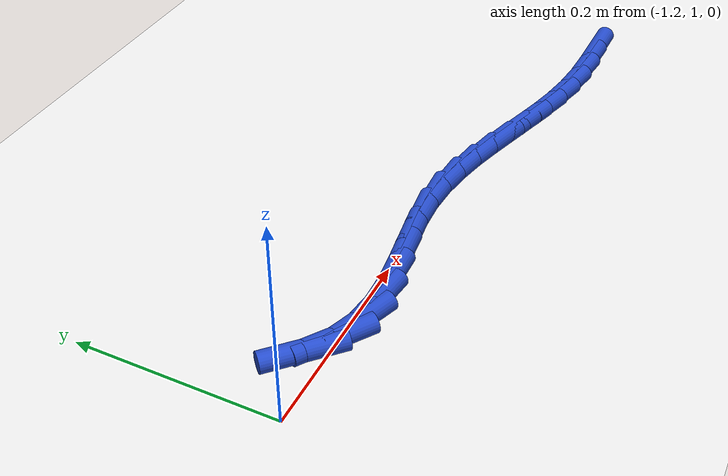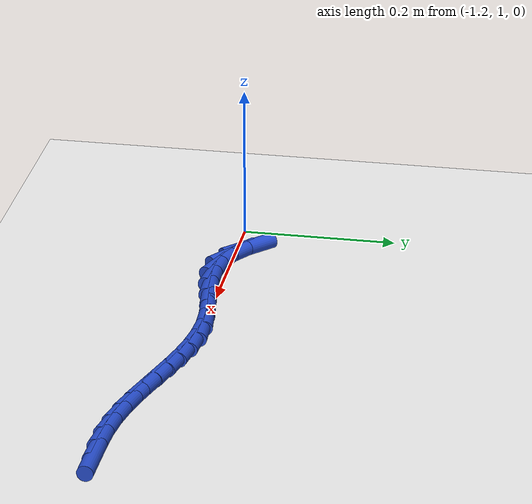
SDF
<sdf version="1.6">
 <world name="default">
  <model name="ground_plane">
   <static>1</static>
   <link name="link">
    <collision name="collision">
     <geometry><plane><normal>0 0 1</normal><size>100 100</size></plane></geometry>
     <surface><friction><ode><mu>100</mu><mu2>50</mu2></ode></friction></surface>
    </collision>
    <visual name="visual">
     <cast_shadows>0</cast_shadows>
     <geometry><plane><normal>0 0 1</normal><size>100 100</size></plane></geometry>
     <material>
      <script><uri>file://media/materials/scripts/gazebo.material</uri><name>Gazebo/WhiteGlow</name></script>
     </material>
    </visual>
   </link>
  </model>
  <model name="line">
   <link name="link_40">
    <pose>-0.5567035319266505 0.941804065390116 0.01 0 1.57 -0.0056425350980393455</pose>
    <collision name="collision">
     <geometry><cylinder><radius>0.01</radius><length>0.08</length></cylinder></geometry>
    </collision>
    <visual name="visual">
     <material>
      <script><name>Gazebo/Blue</name><uri>file://media/materials/scripts/gazebo.material</uri></script>
     </material>
     <geometry><cylinder><radius>0.01</radius><length>0.08</length></cylinder></geometry>
    </visual>
   </link>
   <link name="link_41">
    <pose>-0.5880343188967821 0.9419808523314409 0.01 0 1.57 -0.03506536915329375</pose>
    <collision name="collision">
     <geometry><cylinder><radius>0.01</radius><length>0.08</length></cylinder></geometry>
    </collision>
    <visual name="visual">
     <material>
      <script><name>Gazebo/Blue</name><uri>file://media/materials/scripts/gazebo.material</uri></script>
     </material>
     <geometry><cylinder><radius>0.01</radius><length>0.08</length></cylinder></geometry>
    </visual>
   </link>
   <link name="link_42">
    <pose>-0.6193373895053849 0.9430789561637389 0.01 0 1.57 -0.10591906895784575</pose>
    <collision name="collision">
     <geometry><cylinder><radius>0.01</radius><length>0.08</length></cylinder></geometry>
    </collision>
    <visual name="visual">
     <material>
      <script><name>Gazebo/Blue</name><uri>file://media/materials/scripts/gazebo.material</uri></script>
     </material>
     <geometry><cylinder><radius>0.01</radius><length>0.08</length></cylinder></geometry>
    </visual>
   </link>
   <link name="link_43">
    <pose>-0.6498006407114233 0.9463177161571921 0.01 0 1.57 -0.18078344644667094</pose>
    <collision name="collision">
     <geometry><cylinder><radius>0.01</radius><length>0.08</length></cylinder></geometry>
    </collision>
    <visual name="visual">
     <material>
      <script><name>Gazebo/Blue</name><uri>file://media/materials/scripts/gazebo.material</uri></script>
     </material>
     <geometry><cylinder><radius>0.01</radius><length>0.08</length></cylinder></geometry>
    </visual>
   </link>
   <link name="link_44">
    <pose>-0.679292670590668 0.9517082408670838 0.01 0 1.57 -0.23774428302720194</pose>
    <collision name="collision">
     <geometry><cylinder><radius>0.01</radius><length>0.08</length></cylinder></geometry>
    </collision>
    <visual name="visual">
     <material>
      <script><name>Gazebo/Blue</name><uri>file://media/materials/scripts/gazebo.material</uri></script>
     </material>
     <geometry><cylinder><radius>0.01</radius><length>0.08</length></cylinder></geometry>
    </visual>
   </link>
   <link name="link_45">
    <pose>-0.7080161226382938 0.9586687149854519 0.01 0 1.57 -0.2749756630033735</pose>
    <collision name="collision">
     <geometry><cylinder><radius>0.01</radius><length>0.08</length></cylinder></geometry>
    </collision>
    <visual name="visual">
     <material>
      <script><name>Gazebo/Blue</name><uri>file://media/materials/scripts/gazebo.material</uri></script>
     </material>
     <geometry><cylinder><radius>0.01</radius><length>0.08</length></cylinder></geometry>
    </visual>
   </link>
   <link name="link_46">
    <pose>-0.7361759462146648 0.9666132303402589 0.01 0 1.57 -0.291532859822424</pose>
    <collision name="collision">
     <geometry><cylinder><radius>0.01</radius><length>0.08</length></cylinder></geometry>
    </collision>
    <visual name="visual">
     <material>
      <script><name>Gazebo/Blue</name><uri>file://media/materials/scripts/gazebo.material</uri></script>
     </material>
     <geometry><cylinder><radius>0.01</radius><length>0.08</length></cylinder></geometry>
    </visual>
   </link>
   <link name="link_47">
    <pose>-0.7639770906801445 0.9749558787594681 0.01 0 1.57 -0.2868262808259433</pose>
    <collision name="collision">
     <geometry><cylinder><radius>0.01</radius><length>0.08</length></cylinder></geometry>
    </collision>
    <visual name="visual">
     <material>
      <script><name>Gazebo/Blue</name><uri>file://media/materials/scripts/gazebo.material</uri></script>
     </material>
     <geometry><cylinder><radius>0.01</radius><length>0.08</length></cylinder></geometry>
    </visual>
   </link>
   <link name="link_48">
    <pose>-0.7916245053950974 0.983110752071042 0.01 0 1.57 -0.26043006347054515</pose>
    <collision name="collision">
     <geometry><cylinder><radius>0.01</radius><length>0.08</length></cylinder></geometry>
    </collision>
    <visual name="visual">
     <material>
      <script><name>Gazebo/Blue</name><uri>file://media/materials/scripts/gazebo.material</uri></script>
     </material>
     <geometry><cylinder><radius>0.01</radius><length>0.08</length></cylinder></geometry>
    </visual>
   </link>
   <link name="link_49">
    <pose>-0.8193231397198877 0.9904919421029437 0.01 0 1.57 -0.21216303472597392</pose>
    <collision name="collision">
     <geometry><cylinder><radius>0.01</radius><length>0.08</length></cylinder></geometry>
    </collision>
    <visual name="visual">
     <material>
      <script><name>Gazebo/Blue</name><uri>file://media/materials/scripts/gazebo.material</uri></script>
     </material>
     <geometry><cylinder><radius>0.01</radius><length>0.08</length></cylinder></geometry>
    </visual>
   </link>
   <link name="link_50">
    <pose>-0.8472779430148787 0.9965135406831352 0.01 0 1.57 -0.14247231676425356</pose>
    <collision name="collision">
     <geometry><cylinder><radius>0.01</radius><length>0.08</length></cylinder></geometry>
    </collision>
    <visual name="visual">
     <material>
      <script><name>Gazebo/Blue</name><uri>file://media/materials/scripts/gazebo.material</uri></script>
     </material>
     <geometry><cylinder><radius>0.01</radius><length>0.08</length></cylinder></geometry>
    </visual>
   </link>
   <link name="link_51">
    <pose>-0.8756938646404349 1.0005896396395801 0.01 0 1.57 -0.053065179488171424</pose>
    <collision name="collision">
     <geometry><cylinder><radius>0.01</radius><length>0.08</length></cylinder></geometry>
    </collision>
    <visual name="visual">
     <material>
      <script><name>Gazebo/Blue</name><uri>file://media/materials/scripts/gazebo.material</uri></script>
     </material>
     <geometry><cylinder><radius>0.01</radius><length>0.08</length></cylinder></geometry>
    </visual>
   </link>
   <link name="link_52">
    <pose>-0.9047758539569197 1.0021343308002406 0.01 0 1.57 0.049674849690453465</pose>
    <collision name="collision">
     <geometry><cylinder><radius>0.01</radius><length>0.08</length></cylinder></geometry>
    </collision>
    <visual name="visual">
     <material>
      <script><name>Gazebo/Blue</name><uri>file://media/materials/scripts/gazebo.material</uri></script>
     </material>
     <geometry><cylinder><radius>0.01</radius><length>0.08</length></cylinder></geometry>
    </visual>
   </link>
   <link name="link_53">
    <pose>-0.934701137583983 1.0006465729069214 0.01 0 1.57 0.12389733416307588</pose>
    <collision name="collision">
     <geometry><cylinder><radius>0.01</radius><length>0.08</length></cylinder></geometry>
    </collision>
    <visual name="visual">
     <material>
      <script><name>Gazebo/Blue</name><uri>file://media/materials/scripts/gazebo.material</uri></script>
     </material>
     <geometry><cylinder><radius>0.01</radius><length>0.08</length></cylinder></geometry>
    </visual>
   </link>
   <link name="link_54">
    <pose>-0.9652494244393475 0.996842235428494 0.01 0 1.57 0.1455890739950447</pose>
    <collision name="collision">
     <geometry><cylinder><radius>0.01</radius><length>0.08</length></cylinder></geometry>
    </collision>
    <visual name="visual">
     <material>
      <script><name>Gazebo/Blue</name><uri>file://media/materials/scripts/gazebo.material</uri></script>
     </material>
     <geometry><cylinder><radius>0.01</radius><length>0.08</length></cylinder></geometry>
    </visual>
   </link>
   <link name="link_55">
    <pose>-0.995903025420873 0.9923476047506802 0.01 0 1.57 0.11644786413394823</pose>
    <collision name="collision">
     <geometry><cylinder><radius>0.01</radius><length>0.08</length></cylinder></geometry>
    </collision>
    <visual name="visual">
     <material>
      <script><name>Gazebo/Blue</name><uri>file://media/materials/scripts/gazebo.material</uri></script>
     </material>
     <geometry><cylinder><radius>0.01</radius><length>0.08</length></cylinder></geometry>
    </visual>
   </link>
   <link name="link_56">
    <pose>-1.0261370826259053 0.9888109129240193 0.01 0 1.57 0.03175892774925111</pose>
    <collision name="collision">
     <geometry><cylinder><radius>0.01</radius><length>0.08</length></cylinder></geometry>
    </collision>
    <visual name="visual">
     <material>
      <script><name>Gazebo/Blue</name><uri>file://media/materials/scripts/gazebo.material</uri></script>
     </material>
     <geometry><cylinder><radius>0.01</radius><length>0.08</length></cylinder></geometry>
    </visual>
   </link>
   <link name="link_57">
    <pose>-1.05542673815179 0.9878803919990511 0.01 0 1.57 -0.11891277202247175</pose>
    <collision name="collision">
     <geometry><cylinder><radius>0.01</radius><length>0.08</length></cylinder></geometry>
    </collision>
    <visual name="visual">
     <material>
      <script><name>Gazebo/Blue</name><uri>file://media/materials/scripts/gazebo.material</uri></script>
     </material>
     <geometry><cylinder><radius>0.01</radius><length>0.08</length></cylinder></geometry>
    </visual>
   </link>
   <link name="link_58">
    <pose>-1.083247134095873 0.9912042740263156 0.01 0 1.57 -0.34312167423232015</pose>
    <collision name="collision">
     <geometry><cylinder><radius>0.01</radius><length>0.08</length></cylinder></geometry>
    </collision>
    <visual name="visual">
     <material>
      <script><name>Gazebo/Blue</name><uri>file://media/materials/scripts/gazebo.material</uri></script>
     </material>
     <geometry><cylinder><radius>0.01</radius><length>0.08</length></cylinder></geometry>
    </visual>
   </link>
   <link name="link_59">
    <pose>-1.1090734125554993 1.0004307910563526 0.01 0 1.57 -0.6023063651892756</pose>
    <collision name="collision">
     <geometry><cylinder><radius>0.01</radius><length>0.08</length></cylinder></geometry>
    </collision>
    <visual name="visual">
     <material>
      <script><name>Gazebo/Blue</name><uri>file://media/materials/scripts/gazebo.material</uri></script>
     </material>
     <geometry><cylinder><radius>0.01</radius><length>0.08</length></cylinder></geometry>
    </visual>
   </link>
   <link name="link_60">
    <pose>-1.1325612132692755 1.016579311914428 0.01 0 1.57 -0.7668667659744497</pose>
    <collision name="collision">
     <geometry><cylinder><radius>0.01</radius><length>0.08</length></cylinder></geometry>
    </collision>
    <visual name="visual">
     <material>
      <script><name>Gazebo/Blue</name><uri>file://media/materials/scripts/gazebo.material</uri></script>
     </material>
     <geometry><cylinder><radius>0.01</radius><length>0.08</length></cylinder></geometry>
    </visual>
   </link>
  </model>
 </world>
</sdf>
